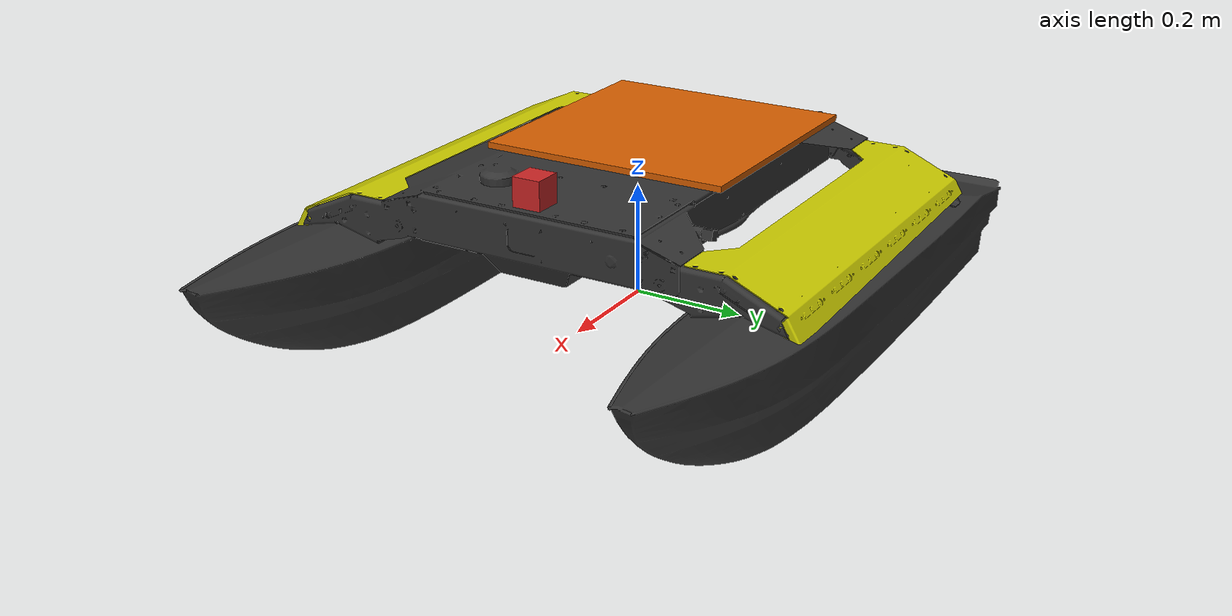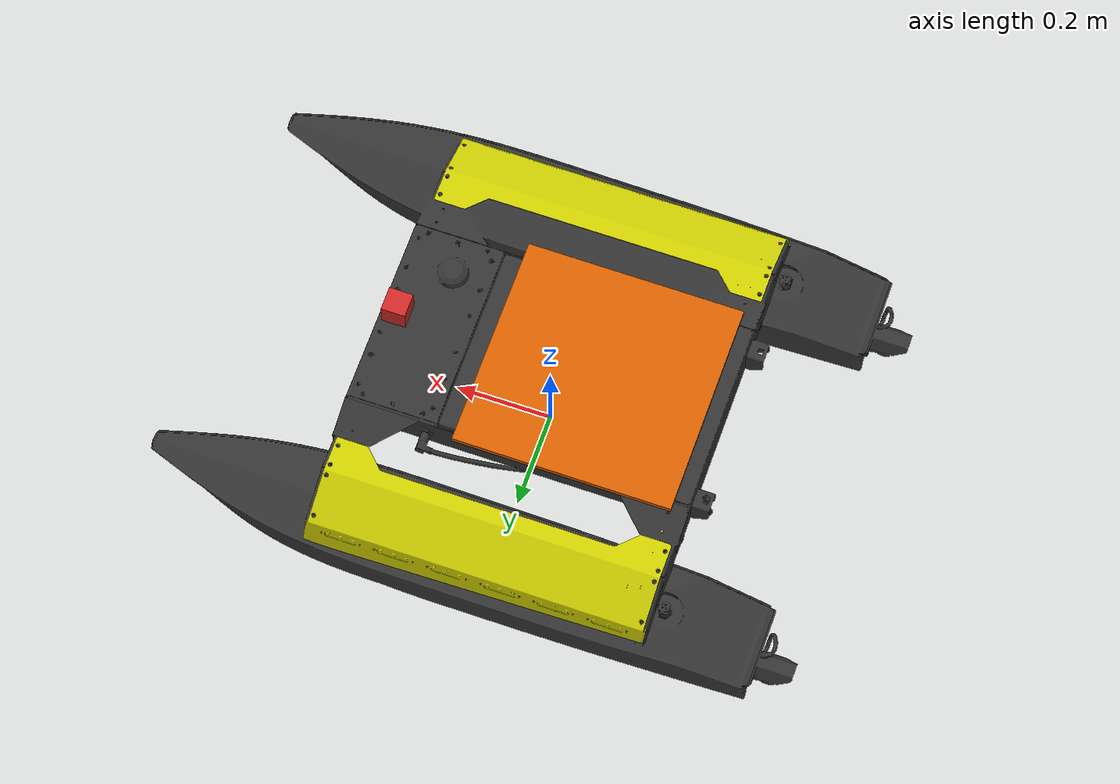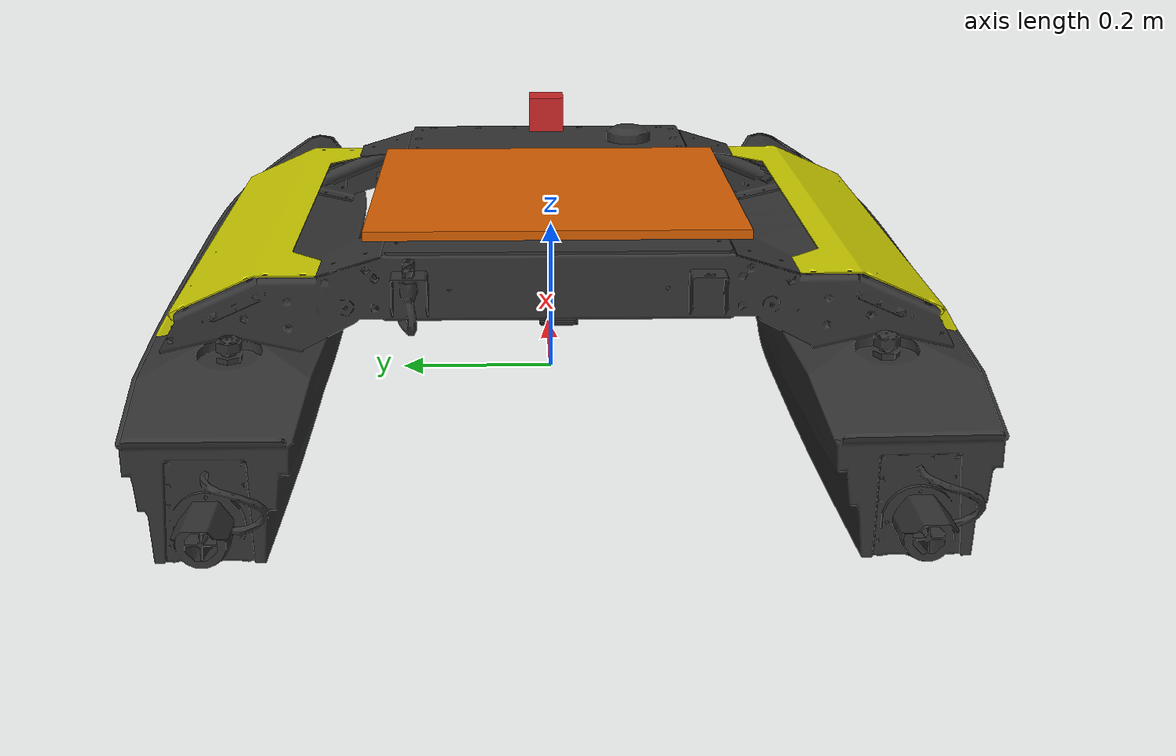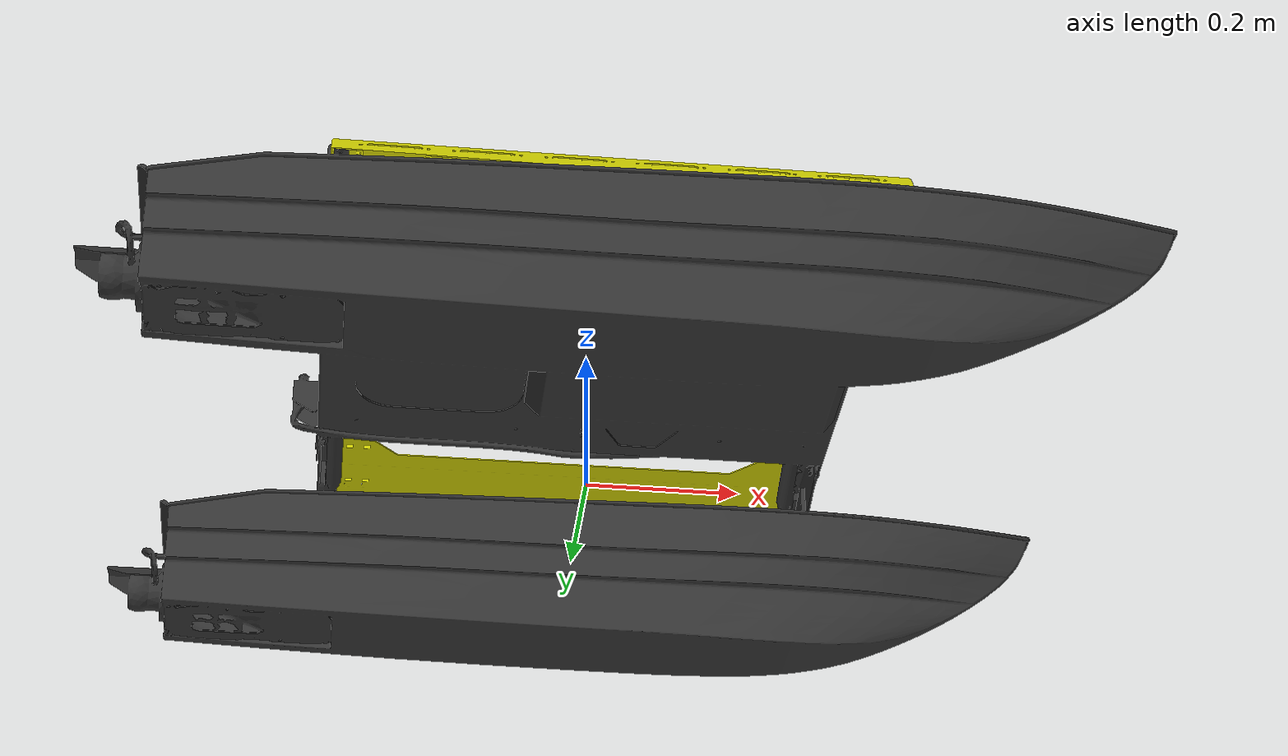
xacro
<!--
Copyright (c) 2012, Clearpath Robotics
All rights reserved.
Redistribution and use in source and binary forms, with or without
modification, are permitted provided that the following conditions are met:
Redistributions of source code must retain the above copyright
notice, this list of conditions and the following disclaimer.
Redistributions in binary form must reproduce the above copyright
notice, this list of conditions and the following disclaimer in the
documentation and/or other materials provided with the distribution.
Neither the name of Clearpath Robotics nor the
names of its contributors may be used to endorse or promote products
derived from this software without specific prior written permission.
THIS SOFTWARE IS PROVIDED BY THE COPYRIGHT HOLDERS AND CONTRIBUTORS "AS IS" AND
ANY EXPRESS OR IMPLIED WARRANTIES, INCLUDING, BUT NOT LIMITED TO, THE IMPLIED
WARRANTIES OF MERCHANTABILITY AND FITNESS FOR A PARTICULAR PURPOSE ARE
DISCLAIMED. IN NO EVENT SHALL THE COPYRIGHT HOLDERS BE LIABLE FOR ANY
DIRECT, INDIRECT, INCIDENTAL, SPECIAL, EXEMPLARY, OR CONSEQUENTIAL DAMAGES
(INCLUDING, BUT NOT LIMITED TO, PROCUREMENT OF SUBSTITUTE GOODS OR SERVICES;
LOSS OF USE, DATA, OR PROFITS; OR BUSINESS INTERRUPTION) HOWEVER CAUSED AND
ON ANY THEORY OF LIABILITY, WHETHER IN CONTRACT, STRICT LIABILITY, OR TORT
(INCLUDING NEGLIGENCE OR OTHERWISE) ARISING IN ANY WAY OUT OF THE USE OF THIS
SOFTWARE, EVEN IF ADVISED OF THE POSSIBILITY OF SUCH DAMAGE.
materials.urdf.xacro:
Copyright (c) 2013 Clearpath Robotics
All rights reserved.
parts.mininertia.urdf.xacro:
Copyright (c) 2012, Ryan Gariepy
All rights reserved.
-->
<?xml version="1.0"?>
<!-- Modified to minimize inertia terms
Brian Bingham
Jan, 2017
Original copyright below-->

<robot name="kingfisher" xmlns:xacro="http://ros.org/wiki/xacro">

  <!-- Included URDF/XACRO Files -->
  <xacro:include filename="$(find kingfisher_description)/urdf/materials.urdf.xacro" />
  <!-- Replace original Kingfisher file with new one with minimial inertia-->
  <xacro:include filename="$(find kingfisher_gazebo)/urdf/parts.mininertia.urdf.xacro" />

  <!-- PROPERTY LIST -->
  <!--All units in m-kg-s-radians unit system -->
  <property name="M_PI" value="3.1415926535897931" />
  <property name="HH" value="0.09" />
  <!-- BASE-FOOTPRINT -->
  <!-- base_fotporint is a fictitious link(frame) that is on the ground right below base_link origin, navigation stack depends on this frame -->
  <link name="base_footprint">
    <inertial>
      <mass value="1e-5" />
      <origin xyz="0 0 ${HH} " />
      <inertia ixx="1e-6" ixy="0.0" ixz="0.0"
	       iyy="1e-6" iyz="0.0"
	       izz="1e-6" />
    </inertial>

    <visual>
      <origin xyz="0 0 ${HH}" rpy="0 0 0" />
      <geometry>
	<box size="0.001 0.001 0.001" />
      </geometry>
    </visual>
  </link>

  <gazebo reference="base_footprint">
    <turnGravityOff>false</turnGravityOff>
  </gazebo>

  <!-- BASE-LINK -->
  <!--Actual body/chassis of the robot-->
  <link name="base_link">
    <inertial>
      <mass value="29" />
      <origin xyz="0 0 ${HH}" />
      <inertia ixx="10" ixy="0" ixz="0" iyy="10" iyz="0" izz="10" />
    </inertial>

    <visual>
      <origin xyz="0 0 ${HH}" rpy="${M_PI/2} 0 ${M_PI/2}" />
      <geometry>
	<mesh filename="package://kingfisher_description/meshes/kingfisher_base.stl" />
      </geometry>
      <material name="DarkGray" />
    </visual>

    <collision>
      <origin xyz="0 0 ${HH}" rpy="0 0 0" />
      <geometry>
	<box size = "1.35 0.98 0.2"/> <!--making it slightly bigger in x and z direction-->
      </geometry>
    </collision>
  </link>
  <joint name="base_footprint_joint" type="fixed">
    <origin xyz="0 0 ${HH}" rpy="0 0 0" />
    <parent link="base_footprint"/>
    <child link="base_link" />
  </joint>
  <gazebo reference="base_link">
    <material>Gazebo/FlatBlack</material>
    <turnGravityOff>false</turnGravityOff>
  </gazebo>

  <!-- PANEL-LINKS -->
  <!-- Top Plate -->
  <kingfisher_part parent="base_footprint" name="left_panel" mesh="left_panel"
		   translateX="0.0" translateY="-0.35" translateZ="${0.05+HH*2}"
		   rotateX="${M_PI/2}" rotateY="0.0" rotateZ="${M_PI/2}"
		   color="Yellow" />
  <gazebo reference="base_footprint_left_panel_part">
    <material>Gazebo/Yellow</material>
  </gazebo>

  <kingfisher_part parent="base_footprint" name="right_panel" mesh="right_panel"
		   translateX="0.0" translateY="0.35" translateZ="${0.05+HH*2}"
		   rotateX="${M_PI/2}" rotateY="0.0" rotateZ="${-M_PI/2}"
		   color="Yellow" />
  <gazebo reference="base_footprint_right_panel_part">
    <material>Gazebo/Yellow</material>
  </gazebo>

  <!-- Define a location for the camera to sit -->
  <xacro:property name="camera_size" value="0.05" /> <!-- Size of square 'camera' box -->

  <joint name="camera_joint" type="fixed">
    <axis xyz="0 1 0" />
    <origin xyz="0.32 0 0.2" rpy="0 0 0"/>
    <parent link="base_link"/>
    <child link="camera_link"/>
  </joint>
  <link name="camera_link">
    <collision>
      <origin xyz="0 0 0" rpy="0 0 0"/>
      <geometry>
	<box size="${camera_size} ${camera_size} ${camera_size}"/>
      </geometry>
    </collision>
    <visual>
      <origin xyz="0 0 0" rpy="0 0 0"/>
      <geometry>
	<box size="${camera_size} ${camera_size} ${camera_size}"/>
      </geometry>
      <material name="red"/>
    </visual>
    <inertial>
      <mass value="1e-5" />
      <origin xyz="0 0 0" rpy="0 0 0"/>
      <inertia ixx="1e-6" ixy="0" ixz="0" iyy="1e-6" iyz="0" izz="1e-6" />
    </inertial>
  </link>
  <gazebo reference="camera_link">
    <material>Gazebo/Red</material>
    <turnGravityOff>false</turnGravityOff>
  </gazebo>

    <!-- Spawn marker -->
  <link name="marker_link">
    <visual>
      <geometry>
        <mesh filename="/home/pulver/.gazebo/models/marker/meshes/artag_01.dae" scale="10 10 10"/>
      </geometry>
    </visual>
  </link>
  <!-- Attach marker -->
  <joint name="marker" type="fixed">
    <origin xyz="-0.1 0 ${0.05+HH*1.5}" rpy="1.57 -1.57 1.57" />
    <parent link="base_link" />
    <child link="marker_link" />
  </joint>
</robot>

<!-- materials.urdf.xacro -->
<robot>
	<material name="Black">
		<color rgba="0.0 0.0 0.0 1.0"/>
	</material>

	<material name="Gray">
		<color rgba="0.7 0.7 0.7 1.0"/>
	</material>

	<material name="DarkGray">
		<color rgba="0.2 0.2 0.2 1.0"/>
	</material>

	<material name="White">
		<color rgba="1.0 1.0 1.0 1.0"/>
	</material>

	<material name="Yellow">
		<color rgba="0.8 0.8 0.0 1.0"/>
	</material>
</robot>

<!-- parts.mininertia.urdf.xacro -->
<!-- Modified to minimize inertia terms
Brian Bingham
Jan, 2017
Original copyright below-->

<robot xmlns:sensor="http://playerstage.sourceforge.net/gazebo/xmlschema/#sensor"
	xmlns:controller="http://playerstage.sourceforge.net/gazebo/xmlschema/#controller"
	xmlns:interface="http://playerstage.sourceforge.net/gazebo/xmlschema/#interface"
	xmlns:xacro="http://ros.org/wiki/xacro" name="kingfisher_part">

	<property name="x_com" value="0.00000000" /> <!-- com : center of mass -->
	<property name="y_com" value="0.00000000" /> <!-- com : center of mass -->
	<property name="z_com" value="0.00000000" /> <!-- com : center of mass -->

	<property name="x_size" value="1.0" />
	<property name="y_size" value="1.0" />
	<property name="z_size" value="1.0" />

	<property name="min_inertia" value="0.00001"/>

	<property name="mass" value="${min_inertia}" /> <!-- in kg-->

	<property name="ixx_com_cs" value="${min_inertia}" /> <!-- at center of mass aligned with coordinate system, kg*m^2-->
	<property name="ixy_com_cs" value="0.0" /> <!-- at center of mass aligned with coordinate system, kg*m^2-->
	<property name="ixz_com_cs" value="0.0" /> <!-- at center of mass aligned with coordinate system, kg*m^2-->
	<property name="iyy_com_cs" value="${min_inertia}" /> <!-- at center of mass aligned with coordinate system, kg*m^2-->
	<property name="iyz_com_cs" value="0.00" /> <!-- at center of mass aligned with coordinate system, kg*m^2-->
	<property name="izz_com_cs" value="${min_inertia}" /> <!-- at center of mass aligned with coordinate system, kg*m^2-->

	<xacro:macro name="kingfisher_part" params="parent name mesh translateX translateY translateZ rotateX rotateY rotateZ color">
		<joint name="${parent}_${name}_joint" type="fixed">
		    <origin xyz="${translateX} ${translateY} ${translateZ}"
		            rpy="${rotateX} ${rotateY} ${rotateZ}" />
		    <parent link="${parent}" />
		    <child link="${parent}_${name}_part" />
		</joint>

		<link name="${parent}_${name}_part">
			<inertial>
				<mass value="${mass}" />
				<origin xyz="${x_com} ${y_com} ${z_com}" />
				<inertia ixx="${ixx_com_cs}" ixy="${ixy_com_cs}" ixz="${ixz_com_cs}"
					iyy="${iyy_com_cs}" iyz="${iyz_com_cs}" izz="${izz_com_cs}" />
			</inertial>
			<visual>
				<origin xyz="0 0 0" rpy="0 0 0" />
				<geometry>
					<mesh filename="package://kingfisher_description/meshes/${mesh}.stl" />
				</geometry>
        <material name="${color}" />
			</visual>
			<collision>
				<origin xyz="0 0 0" rpy="0 0 0"/>
				<geometry>
					<box size="0.001 0.001 0.001" /> <!--the collision boundary for parts are taken into account by collision boundary of the base_link-->
				</geometry>
			</collision>
		</link>

  	</xacro:macro>
</robot>
